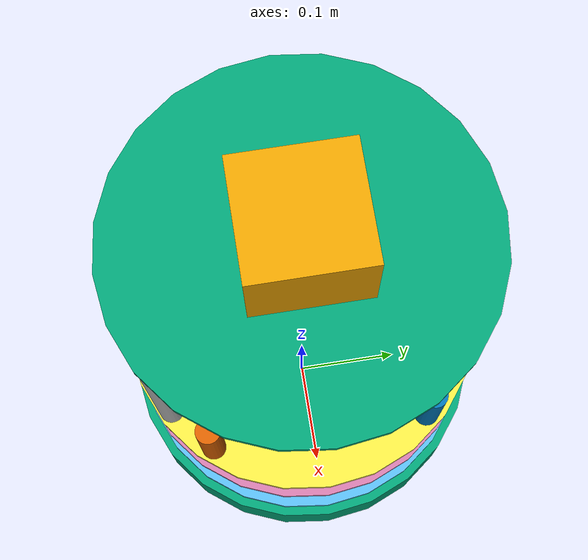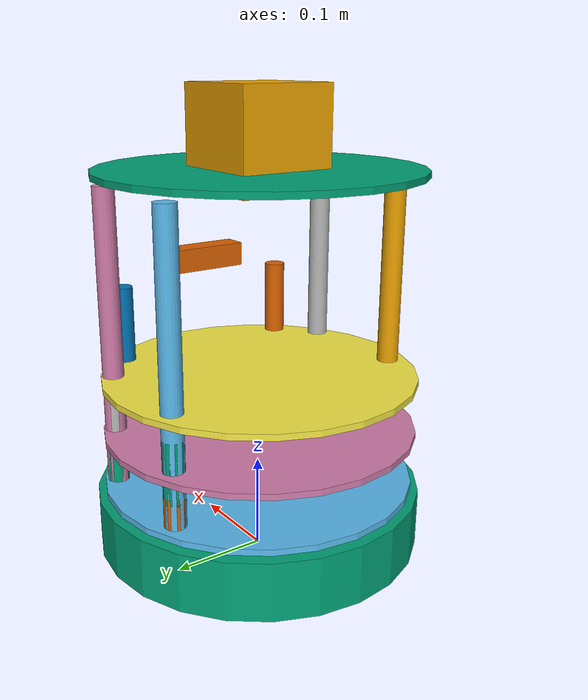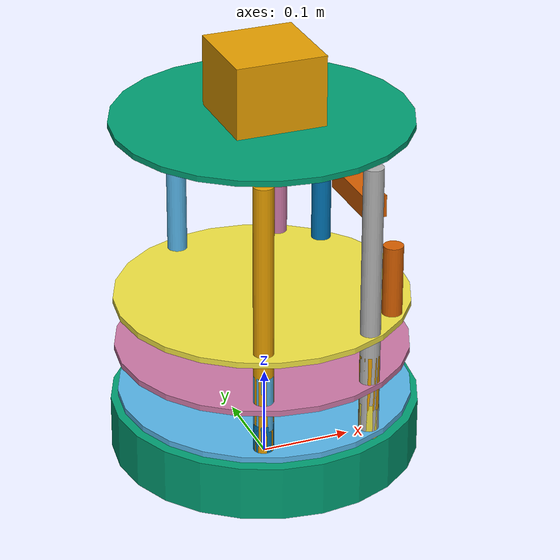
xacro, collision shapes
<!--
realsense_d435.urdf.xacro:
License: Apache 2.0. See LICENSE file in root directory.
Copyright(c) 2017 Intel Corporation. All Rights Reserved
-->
<?xml version="1.0"?>
<!--
    - Base      : create
    - Stacks    : circles
    - 3d Sensor : sensor_asus_xtion_pro
-->
<robot name="turtlebot" xmlns:xacro="http://ros.org/wiki/xacro">

  <xacro:include filename="$(find turtlebot_description)/urdf/turtlebot_library.urdf.xacro" />

  <create/>
  <stack_circles          parent="base_link"/>
  <sensor_d435  parent="base_link"/>
</robot>

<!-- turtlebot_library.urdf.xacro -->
<!--
  The complete turtlebot library of xacros for easy reference
 -->
<robot xmlns:xacro="http://ros.org/wiki/xacro">
  <!-- General -->
  <xacro:include filename="$(find turtlebot_description)/urdf/common_properties.urdf.xacro"/>
  <!-- Bases -->
  <xacro:include filename="$(find turtlebot_description)/urdf/bases/create.urdf.xacro"/>
  <xacro:include filename="$(find turtlebot_description)/urdf/bases/kobuki.urdf.xacro" />
  <!-- Stacks -->
  <xacro:include filename="$(find turtlebot_description)/urdf/stacks/circles.urdf.xacro"/>
  <xacro:include filename="$(find turtlebot_description)/urdf/stacks/hexagons.urdf.xacro"/>
  <!-- 3D Sensors -->
  <xacro:include filename="$(find turtlebot_description)/urdf/sensors/kinect.urdf.xacro"/>
  <xacro:include filename="$(find turtlebot_description)/urdf/sensors/asus_xtion_pro.urdf.xacro"/>
  <xacro:include filename="$(find turtlebot_description)/urdf/sensors/asus_xtion_pro_offset.urdf.xacro"/>
  <xacro:include filename="$(find turtlebot_description)/urdf/sensors/realsense_d435.urdf.xacro"/>
</robot>

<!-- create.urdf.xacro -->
<robot name="turtlebot_hardware" xmlns:xacro="http://ros.org/wiki/xacro">

	<!-- Macro for TurtleBot body. Including Gazebo extensions, but does not include Kinect -->
	<xacro:include filename="$(find turtlebot_description)/urdf/bases/create_gazebo.urdf.xacro"/>

	<xacro:macro name="create">
		<material name="Green">
			<color rgba="0.0 0.8 0.0 1.0"/>
		</material>

		<joint name="laser_joint" type="fixed">
			<origin xyz="0.0 0.0 0.42" rpy="0 0 0"/>
			<parent link="base_link" />
			<child link="laser_sensor_link" />
		</joint>

		<link name="laser_sensor_link">
			<inertial>
				<mass value="1e-5"/>
				<origin xyz="0 0 0" rpy="0 0 0"/>
				<inertia ixx="1e-6" ixy="0" ixz="0" iyy="1e-6" iyz="0" izz="1e-6"/>
			</inertial>
			<collision>
				<origin xyz="0 0 0" rpy="0 0 0"/>
				<geometry>
					<box size="0.1 0.1 0.1"/>
				</geometry>
			</collision>
			<visual>
				<origin xyz="0 0 -0.03" rpy="1.570796 0 -1.570796"/>
				<geometry>
				<mesh filename="package://turtlebot_description/meshes/sensors/rplidar.dae" scale="0.001 0.001 0.001" />
			</geometry>
			</visual>
		</link>

		<!-- base_footprint is a fictitious link(frame) that is on the ground right below base_link origin, navigation stack depends on this frame -->
		<link name="base_footprint">
			<visual>
			<origin xyz="0 0 0" rpy="0 0 0" />
			<geometry>
				<box size="0.001 0.001 0.001" />
			</geometry>
			<material name="Green" />
			</visual>

			<collision>
			<origin xyz="0 0 0.017" rpy="0 0 0" />
			<geometry>
			<box size="0.001 0.001 0.001" />
			</geometry>
			</collision>
		</link>

		<link name="base_link">
			<inertial>
			<mass value="2" />
			<origin xyz="0 0 0.0" />
			<inertia ixx="0.01" ixy="0.0" ixz="0.0"
				iyy="0.01" iyz="0.0" izz="0.5" />
			</inertial>

			<visual>
			<origin xyz=" 0 0 0.0308" rpy="0 0 0" />
			<geometry>
				<mesh filename="package://turtlebot_description/meshes/create_body.dae"/>
			</geometry>
			</visual>

			<collision name="base_link">
			<origin xyz="0.0 0.0 0.0308" rpy="0 0 0" />
			<geometry>
				<cylinder length="0.0611632" radius="0.17"/>
			</geometry>
			</collision>
		</link>

		<link name="left_wheel_link">
			<inertial>
			<origin xyz="0 0 0"/>
			<mass value="0.01" />
			<inertia ixx="0.001" ixy="0.0" ixz="0.0"
				iyy="0.001" iyz="0.0" izz="0.001" />
			</inertial>

			<visual>
			<origin xyz="0 0 0" rpy="0 1.5707 1.5707" />
			<geometry>
				<cylinder radius="0.033" length = "0.023"/>
			</geometry>
			</visual>

			<collision>
			<origin xyz="0 0 0" rpy="0 1.5707 1.5707" />
			<geometry>
				<cylinder radius="0.033" length = "0.023"/>
			</geometry>
			</collision>
		</link>

		<joint name="left_wheel_joint" type="continuous">
			<origin xyz="0 0.13 0.015" rpy="0 0 0"/>
			<parent link="base_link"/>
			<child link="left_wheel_link"/>
			<axis xyz="0 1 0"/>
		</joint>

		<link name="right_wheel_link">
			<inertial>
			<origin xyz="0 0 0"/>
			<mass value="0.01" />
			<inertia ixx="0.001" ixy="0.0" ixz="0.0"
				iyy="0.001" iyz="0.0" izz="0.001" />
			</inertial>

			<visual>
			<origin xyz="0 0 0" rpy="0 1.5707 1.5707" />
			<geometry>
				<cylinder radius="0.033" length = "0.023"/>
			</geometry>
			</visual>

			<collision>
			<origin xyz="0 0 0" rpy="0 1.5707 1.5707" />
			<geometry>
				<cylinder radius="0.033" length = "0.023"/>
			</geometry>
			</collision>
		</link>

		<joint name="right_wheel_joint" type="continuous">
			<origin xyz="0 -0.13 0.015" rpy="0 0 0"/>
			<parent link="base_link"/>
			<child link="right_wheel_link"/>
			<axis xyz="0 1 0"/>
		</joint>

		<link name="rear_wheel_link">
			<inertial>
				<origin xyz="0 0 0"/>
				<mass value="0.001" />
				<inertia ixx="0.0001" ixy="0.0" ixz="0.0"
					iyy="0.0001" iyz="0.0" izz="0.0001" />
			</inertial>

			<visual>
				<origin xyz="0 0 0" rpy="0 1.5707 1.5707"/>
				<geometry>
					<sphere radius="0.015" />
				</geometry>
			</visual>

			<collision>
				<origin xyz="0 0 0" rpy="0 1.5707 1.5707" />
				<geometry>
					<sphere radius="0.015" />
				</geometry>
			</collision>
		</link>
		<!-- fixed because there's no transmission -->
		<joint name="rear_castor_joint" type="fixed">
			<origin xyz="-0.13 0 0.0" rpy="0 0 0"/>
			<parent link="base_link"/>
			<child link="rear_wheel_link"/>
			<axis xyz="0 1 0"/>
		</joint>

		<link name="front_wheel_link">
			<inertial>
				<origin xyz="0 0 0" />
				<mass value="0.01" />
				<inertia ixx="0.001" ixy="0.0" ixz="0.0"
					iyy="0.001" iyz="0.0" izz="0.001" />
			</inertial>

			<visual>
				<origin xyz="0 0 0" rpy="0 1.5707 1.5707"/>
				<geometry>
					<sphere radius="0.018" />
				</geometry>
			</visual>

			<collision>
				<origin xyz="0 0 0" rpy="0 1.5707 1.5707" />
				<geometry>
					<sphere radius="0.018" />
				</geometry>
			</collision>
		</link>

		<!-- fixed because there's no transmission -->
		<joint name="front_castor_joint" type="fixed">
			<origin xyz="0.13 0 0.0" rpy="0 0 0"/>
			<parent link="base_link"/>
			<child link="front_wheel_link"/>
			<axis xyz="0 1 0"/>
		</joint>

		<link name="wall_sensor_link">
			<inertial>
			<mass value="0.01" />
			<origin xyz="0 0 0"/>
			<inertia ixx="0.001" ixy="0.0" ixz="0.0"
				iyy="0.001" iyz="0.0" izz="0.001" />
			</inertial>
		</link>

		<link name="left_cliff_sensor_link">
			<inertial>
			<mass value="0.01" />
			<origin xyz="0 0 0"/>
			<inertia ixx="0.001" ixy="0.0" ixz="0.0"
				iyy="0.001" iyz="0.0" izz="0.001" />
			</inertial>
		</link>

		<link name="right_cliff_sensor_link">
			<inertial>
			<mass value="0.01" />
			<origin xyz="0 0 0"/>
			<inertia ixx="0.001" ixy="0.0" ixz="0.0"
				iyy="0.001" iyz="0.0" izz="0.001" />
			</inertial>
		</link>

		<link name="leftfront_cliff_sensor_link">
			<inertial>
			<mass value="0.01" />
			<origin xyz="0 0 0"/>
			<inertia ixx="1.0" ixy="0.0" ixz="0.0"
				iyy="0.01" iyz="0.0" izz="0.01" />
			</inertial>
		</link>

		<link name="rightfront_cliff_sensor_link">
			<inertial>
			<mass value="0.01" />
			<origin xyz="0 0 0"/>
			<inertia ixx="0.001" ixy="0.0" ixz="0.0"
				iyy="0.001" iyz="0.0" izz="0.001" />
			</inertial>
		</link>

		<joint name="base_footprint_joint" type="fixed">
			<origin xyz="0 0 0.017" rpy="0 0 0" />
			<parent link="base_footprint"/>
			<child link="base_link" />
		</joint>

		<joint name="base_wall_sensor_joint" type="fixed">
			<origin xyz="0.09 -0.120 0.042" rpy="0 0 -1.0" />
			<parent link="base_link"/>
			<child link="wall_sensor_link" />
		</joint>

		<joint name="base_left_cliff_sensor_joint" type="fixed">
			<origin xyz="0.07 0.14 0.01" rpy="0 1.57079 0" />
			<parent link="base_link"/>
			<child link="left_cliff_sensor_link" />
		</joint>

		<joint name="base_right_cliff_sensor_joint" type="fixed">
			<origin xyz="0.07 -0.14 0.01" rpy="0 1.57079 0" />
			<parent link="base_link"/>
			<child link="right_cliff_sensor_link" />
		</joint>

		<joint name="base_leftfront_cliff_sensor_joint" type="fixed">
			<origin xyz="0.15 0.04 0.01" rpy="0 1.57079 0" />
			<parent link="base_link"/>
			<child link="leftfront_cliff_sensor_link" />
		</joint>

		<joint name="base_rightfront_cliff_sensor_joint" type="fixed">
			<origin xyz="0.15 -0.04 0.01" rpy="0 1.57079 0" />
			<parent link="base_link"/>
			<child link="rightfront_cliff_sensor_link" />
		</joint>

		<joint name="gyro_joint" type="fixed">
			<axis xyz="0 1 0" />
			<origin xyz="0 0 0.04" rpy="0 0 0" />
			<parent link="base_link"/>
			<child link="gyro_link"/>
		</joint>
		<link name="gyro_link">
			<inertial>
			<mass value="0.001" />
			<origin xyz="0 0 0" rpy="0 0 0" />
			<inertia ixx="0.0001" ixy="0" ixz="0" iyy="0.000001" iyz="0" izz="0.0001" />
			</inertial>
		</link>

	  <!-- Simulation sensors -->
		<sim_create/>
		<sim_imu/>
  	</xacro:macro>
</robot>

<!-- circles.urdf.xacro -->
<robot name="turtlebot_hardware" xmlns:xacro="http://ros.org/wiki/xacro">

  <xacro:macro name="turtlebot_spacer" params="parent number x_loc y_loc z_loc">
    <joint name="spacer_${number}_joint" type="fixed">
      <origin xyz="${x_loc} ${y_loc} ${z_loc}" rpy="0 0 0" />
      <parent link="${parent}"/>
      <child link="spacer_${number}_link" />
    </joint>

    <link name="spacer_${number}_link">
      <inertial>
        <mass value="0.001" />
        <origin xyz="0 0 0" />
        <inertia ixx="0.0001" ixy="0.0" ixz="0.0"
          iyy="0.0001" iyz="0.0"
          izz="0.0001" />
      </inertial>

      <visual>
        <origin xyz=" 0 0 0 " rpy="0 0 0" />
        <geometry>
          <mesh filename="package://turtlebot_description/meshes/stacks/circles/68-02403-125_Spacer.dae"/>
        </geometry>
      </visual>

      <collision>
        <origin xyz="0.0 0.0 0.0" rpy="0 0 0" />
        <geometry>
          <cylinder length="0.003175" radius=".0127"/>
        </geometry>
      </collision>
    </link>
  </xacro:macro>

  <xacro:macro name="turtlebot_standoff_1in" params="parent number x_loc y_loc z_loc">
    <joint name="standoff_1in_${number}_joint" type="fixed">
      <origin xyz="${x_loc} ${y_loc} ${z_loc}" rpy="0 0 0" />
      <parent link="${parent}"/>
      <child link="standoff_1in_${number}_link" />
    </joint>

    <link name="standoff_1in_${number}_link">
      <inertial>
        <mass value="0.001" />
        <origin xyz="0 0 0" />
        <inertia ixx="0.0001" ixy="0.0" ixz="0.0"
          iyy="0.0001" iyz="0.0"
          izz="0.0001" />
      </inertial>

      <visual>
        <origin xyz=" 0 0 0 " rpy="0 0 0" />
        <geometry>
          <mesh filename="package://turtlebot_description/meshes/stacks/circles/68-04552-1000-RA_Turtlebot_M-F_Standoff.dae"/>
        </geometry>
      </visual>

      <collision>
        <origin xyz="0.0 0.0 0.0" rpy="0 0 0" />
        <geometry>
          <cylinder length="0.0381" radius="0.011113"/>
        </geometry>
      </collision>
    </link>
  </xacro:macro>

  <xacro:macro name="turtlebot_standoff_2in" params="parent number x_loc y_loc z_loc">
    <joint name="standoff_2in_${number}_joint" type="fixed">
      <origin xyz="${x_loc} ${y_loc} ${z_loc}" rpy="0 0 0" />
      <parent link="${parent}"/>
      <child link="standoff_2in_${number}_link" />
    </joint>

    <link name="standoff_2in_${number}_link">
      <inertial>
        <mass value="0.001" />
        <origin xyz="0 0 0" />
        <inertia ixx="0.0001" ixy="0.0" ixz="0.0"
          iyy="0.0001" iyz="0.0"
          izz="0.0001" />
      </inertial>

      <visual>
        <origin xyz=" 0 0 0 " rpy="0 0 0" />
        <geometry>
          <mesh filename="package://turtlebot_description/meshes/stacks/circles/68-04552-2000-RA_Turtlebot_M-F_Standoff.dae"/>
        </geometry>
      </visual>

      <collision>
        <origin xyz="0.0 0.0 0.0" rpy="0 0 0" />
        <geometry>
          <cylinder length="0.0635" radius="0.011"/>
        </geometry>
      </collision>
    </link>
  </xacro:macro>

  <xacro:macro name="turtlebot_standoff_8in" params="parent number x_loc y_loc z_loc">
    <joint name="standoff_8in_${number}_joint" type="fixed">
      <origin xyz="${x_loc} ${y_loc} ${z_loc}" rpy="0 0 0" />
      <parent link="${parent}"/>
      <child link="standoff_8in_${number}_link" />
    </joint>

    <link name="standoff_8in_${number}_link">
      <inertial>
        <mass value="0.001" />
        <origin xyz="0 0 0" />
        <inertia ixx="0.0001" ixy="0.0" ixz="0.0"
          iyy="0.0001" iyz="0.0"
          izz="0.0001" />
      </inertial>

      <visual>
        <origin xyz=" 0 0 0 " rpy="0 0 0" />
        <geometry>
          <mesh filename="package://turtlebot_description/meshes/stacks/circles/68-02421-8000-RA_Turtlebot_F-F_Standoff.dae"/>
        </geometry>
      </visual>

      <collision>
        <origin xyz="0.0 0.0 0.0" rpy="0 0 0" />
        <geometry>
          <cylinder length="0.3832" radius="0.011"/>
        </geometry>
      </collision>
    </link>
  </xacro:macro>

  <xacro:macro name="turtlebot_standoff_kinect" params="parent number x_loc y_loc z_loc">
    <joint name="standoff_kinect_${number}_joint" type="fixed">
      <origin xyz="${x_loc} ${y_loc} ${z_loc}" rpy="0 0 0" />
      <parent link="${parent}"/>
      <child link="standoff_kinect_${number}_link" />
    </joint>

    <link name="standoff_kinect_${number}_link">
      <inertial>
        <mass value="0.001" />
        <origin xyz="0 0 0" />
        <inertia ixx="0.0001" ixy="0.0" ixz="0.0"
          iyy="0.0001" iyz="0.0"
          izz="0.0001" />
      </inertial>

      <visual>
        <origin xyz=" 0 0 0 " rpy="0 0 0" />
        <geometry>
          <mesh filename="package://turtlebot_description/meshes/stacks/circles/68-04556-RA_Kinect_Standoff_Assy.dae"/>
        </geometry>
      </visual>

      <collision>
        <origin xyz="0.0 0.0 0.04" rpy="0 0 0" />
        <geometry>
          <cylinder length="0.08" radius="0.011"/>
        </geometry>
      </collision>
    </link>
  </xacro:macro>

  <xacro:macro name="stack_circles" params="parent">
    <turtlebot_spacer parent="${parent}" number="0" x_loc="-0.00254" y_loc="0.1114679" z_loc="0.062992"/>
    <turtlebot_spacer parent="${parent}" number="1" x_loc="-0.00254" y_loc="-0.1114679" z_loc="0.062992"/>
    <turtlebot_spacer parent="${parent}" number="2" x_loc="-0.07239" y_loc="-0.1114679" z_loc="0.062992"/>
    <turtlebot_spacer parent="${parent}" number="3" x_loc="-0.07239" y_loc="0.1114679" z_loc="0.062992"/>

    <joint name="plate_0_joint" type="fixed">
      <origin xyz="-0.04334 0  0.06775704" rpy="0 0 0" />
      <parent link="${parent}"/>
      <child link="plate_0_link" />
    </joint>

    <link name="plate_0_link">
      <inertial>
        <mass value="0.01" />
        <origin xyz="0 0 0" />
        <inertia ixx="0.01" ixy="0.0" ixz="0.0"
          iyy="0.01" iyz="0.0"
          izz="0.01" />
      </inertial>

      <visual>
        <origin xyz=" 0 0 0 " rpy="0 0 0" />
        <geometry>
          <mesh filename="package://turtlebot_description/meshes/stacks/circles/plate_0_logo.dae"/>
        </geometry>
      </visual>

      <collision>
        <origin xyz="0.04334 0.0 0.0" rpy="0 0 0" />
        <geometry>
          <cylinder length="0.0064" radius="0.162"/>
        </geometry>
      </collision>
    </link>

    <turtlebot_standoff_2in parent="${parent}" number="0" x_loc="0.0676402" y_loc="0.1314196" z_loc="0.0709803"/>
    <turtlebot_standoff_2in parent="${parent}" number="1" x_loc="0.0676402" y_loc="-0.1314196" z_loc="0.0709803"/>
    <turtlebot_standoff_2in parent="${parent}" number="2" x_loc="-0.052832" y_loc="-0.1314196" z_loc="0.0709803"/>
    <turtlebot_standoff_2in parent="${parent}" number="3" x_loc="-0.052832" y_loc="0.1314196" z_loc="0.0709803"/>

    <joint name="plate_1_joint" type="fixed">
      <origin xyz="0.04068 0 0.05715" rpy="0 0 0" />
      <parent link="plate_0_link"/>
      <child link="plate_1_link" />
    </joint>

    <link name="plate_1_link">
      <inertial>
        <mass value="0.1" />
        <origin xyz="0 0 0" />
        <inertia ixx="0.01" ixy="0.0" ixz="0.0"
          iyy="0.01" iyz="0.0"
          izz="0.01" />
      </inertial>

      <visual>
        <origin xyz=" 0 0 0 " rpy="0 0 0" />
        <geometry>
          <mesh filename="package://turtlebot_description/meshes/stacks/circles/plate_1_logo.dae"/>
        </geometry>
      </visual>

      <collision>
        <origin xyz="0.0 0.0 0.0" rpy="0 0 0" />
        <geometry>
          <cylinder length="0.0064" radius="0.162"/>
        </geometry>
      </collision>
    </link>

    <turtlebot_standoff_2in parent="standoff_2in_0_link" number="4" x_loc="0" y_loc="0" z_loc="0.05715"/>
    <turtlebot_standoff_2in parent="standoff_2in_1_link" number="5" x_loc="0" y_loc="0" z_loc="0.05715"/>
    <turtlebot_standoff_2in parent="standoff_2in_2_link" number="6" x_loc="0" y_loc="0" z_loc="0.05715"/>
    <turtlebot_standoff_2in parent="standoff_2in_3_link" number="7" x_loc="0" y_loc="0" z_loc="0.05715"/>

    <joint name="plate_2_joint" type="fixed">
      <origin xyz="0 0 0.0572008" rpy="0 0 0" />
      <parent link="plate_1_link"/>
      <child link="plate_2_link" />
    </joint>
    <link name="plate_2_link">
      <inertial>
        <mass value="0.01" />
        <origin xyz="0 0 0" />
        <inertia ixx="0.001" ixy="0.0" ixz="0.0"
          iyy="0.001" iyz="0.0"
          izz="0.001" />
      </inertial>

      <visual>
        <origin xyz=" 0 0 0 " rpy="0 0 0" />
        <geometry>
          <mesh filename="package://turtlebot_description/meshes/stacks/circles/plate_1_logo.dae"/>
        </geometry>
      </visual>

      <collision>
        <origin xyz="0.0 0.0 0.0" rpy="0 0 0" />
        <geometry>
          <cylinder length="0.0064" radius="0.162"/>
        </geometry>
      </collision>
    </link>

    <turtlebot_standoff_kinect parent="plate_2_link" number="0" x_loc="0.11" y_loc="0.098" z_loc="0.0032004"/>
    <turtlebot_standoff_kinect parent="plate_2_link" number="1" x_loc="0.11" y_loc="-0.098" z_loc="0.0032004"/>

    <turtlebot_standoff_8in parent="standoff_2in_4_link" number="0" x_loc="0" y_loc="0" z_loc="0.05715"/>
    <turtlebot_standoff_8in parent="standoff_2in_5_link" number="1" x_loc="0" y_loc="0" z_loc="0.05715"/>
    <turtlebot_standoff_8in parent="standoff_2in_6_link" number="2" x_loc="0" y_loc="0" z_loc="0.05715"/>
    <turtlebot_standoff_8in parent="standoff_2in_7_link" number="3" x_loc="0" y_loc="0" z_loc="0.05715"/>

    <joint name="plate_3_joint" type="fixed">
      <origin xyz="-0.01316 0 0.2063496" rpy="0 0 0" />
      <parent link="plate_2_link"/>
      <child link="plate_3_link" />
    </joint>

    <link name="plate_3_link">
      <inertial>
        <mass value="0.01" />
        <origin xyz="0 0 0" />
        <inertia ixx="0.0001" ixy="0.0" ixz="0.0"
          iyy="0.0001" iyz="0.0"
          izz="0.0001" />
      </inertial>

      <visual>
        <origin xyz=" 0 0 0 " rpy="0 0 0" />
        <geometry>
          <mesh filename="package://turtlebot_description/meshes/stacks/circles/plate_2_logo.dae"/>
        </geometry>
      </visual>

      <collision>
        <origin xyz="0.01316 0.0 0.0" rpy="0 0 0" />
        <geometry>
          <cylinder length="0.0064" radius="0.162"/>
        </geometry>
      </collision>
    </link>
  </xacro:macro>
</robot>

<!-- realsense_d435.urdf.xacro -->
<robot name="sensor_d435" xmlns:xacro="http://ros.org/wiki/xacro">
  <!-- Includes -->
  <xacro:include filename="$(find turtlebot_description)/urdf/sensors/camera_gazebo.urdf.xacro"/>
  <xacro:include filename="$(find turtlebot_description)/urdf/sensors/laser_gazebo.urdf.xacro"/>
  <xacro:include filename="$(find turtlebot_description)/urdf/sensors/bumper_gazebo.urdf.xacro"/>

  <xacro:macro name="sensor_d435" params="parent name:=camera">
    <xacro:property name="M_PI" value="3.1415926535897931" />

    <!-- The following values are approximate, and the camera node
     publishing TF values with actual calibrated camera extrinsic values -->
    <xacro:property name="d435_cam_depth_to_infra1_offset" value="0.0"/>
    <xacro:property name="d435_cam_depth_to_infra2_offset" value="-0.050"/>
    <xacro:property name="d435_cam_depth_to_color_offset" value="0.015"/>

    <!-- The following values model the aluminum peripherial case for the
  	D435 camera, with the camera joint represented by the actual
  	peripherial camera tripod mount -->
    <xacro:property name="d435_cam_width" value="0.090"/>
    <xacro:property name="d435_cam_height" value="0.025"/>
    <xacro:property name="d435_cam_depth" value="0.02505"/>
    <xacro:property name="d435_cam_mount_from_center_offset" value="0.0149"/>

    <!-- The following offset is relative the the physical D435 camera peripherial
  	camera tripod mount -->
    <xacro:property name="d435_cam_depth_px" value="${d435_cam_mount_from_center_offset}"/>
    <xacro:property name="d435_cam_depth_py" value="0.0175"/>
    <xacro:property name="d435_cam_depth_pz" value="${d435_cam_height/2}"/>

    <!-- Asus mount -->
    <joint name="mount_asus_xtion_pro_joint" type="fixed">
      <origin xyz="0.11 0 0.272" rpy="0 0 0"/>
      <parent link="${parent}"/>
      <child link="mount_asus_xtion_pro_link"/>
    </joint>
    <link name="mount_asus_xtion_pro_link">
      <visual>
        <origin xyz="0 0 0" rpy="${-M_PI/2} 0 0"/>
        <geometry>
          <mesh filename="package://turtlebot_description/meshes/sensors/xtion_pro_stack.dae"/>
        </geometry>
      </visual>
      <collision>
        <origin xyz="0.0 0.0 0.0" rpy="0 0 0" />
        <geometry>
        <box size="0.0 0.0 0.0"/>
      </geometry>
      </collision>
      <inertial>
        <mass value="0.170" />
        <origin xyz="0 0 0" />
        <inertia ixx="0.001152600" ixy="0.0" ixz="0.0"
                 iyy="0.000148934" iyz="0.0"
                 izz="0.001154654" />
      </inertial>
    </link>

    <!-- camera body, with origin at bottom screw mount -->
    <joint name="${name}_joint" type="fixed">
      <origin xyz="0 0 0" rpy="0 0 0"/>
      <parent link="mount_asus_xtion_pro_link"/>
      <child link="${name}_bottom_screw_frame" />
    </joint>
    <link name="${name}_bottom_screw_frame"/>

    <joint name="${name}_link_joint" type="fixed">
      <origin xyz="0 ${d435_cam_depth_py} ${d435_cam_depth_pz}" rpy="0 0 0"/>
      <parent link="${name}_bottom_screw_frame"/>
      <child link="${name}_link" />
    </joint>

    <link name="${name}_link">
      <visual>
        <origin xyz="${d435_cam_mount_from_center_offset} ${-d435_cam_depth_py} 0" rpy="${M_PI/2} 0 ${M_PI/2}"/>
        <geometry>
	        <mesh filename="package://turtlebot_description/meshes/sensors/d435.dae" />
        </geometry>
      </visual>
      <collision>
        <origin xyz="0 ${-d435_cam_depth_py} 0" rpy="0 0 0"/>
        <geometry>
          <box size="${d435_cam_depth} ${d435_cam_width} ${d435_cam_height}"/>
        </geometry>
      </collision>
      <inertial>
        <!-- The following are not reliable values, and should not be used for modeling -->
        <mass value="0.564" />
        <origin xyz="0 0 0" />
        <inertia ixx="0.003881243" ixy="0.0" ixz="0.0" iyy="0.000498940" iyz="0.0" izz="0.003879257" />
      </inertial>
    </link>

    <turtlebot_sim_3dsensor/>
    <turtlebot_sim_laser/>
    <turtlebot_sim_bumper/>
  </xacro:macro>
</robot>
